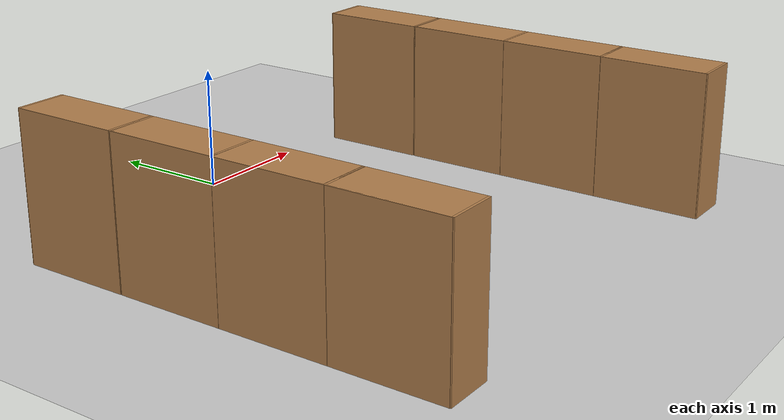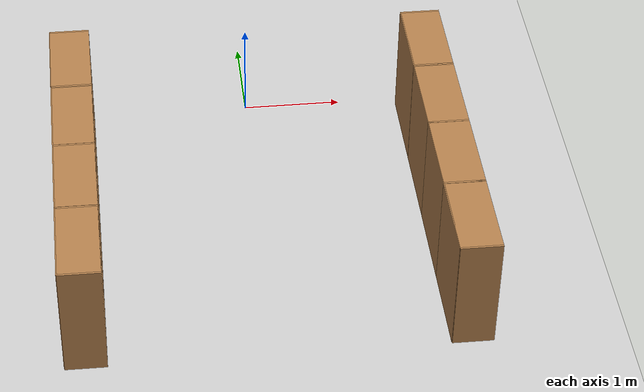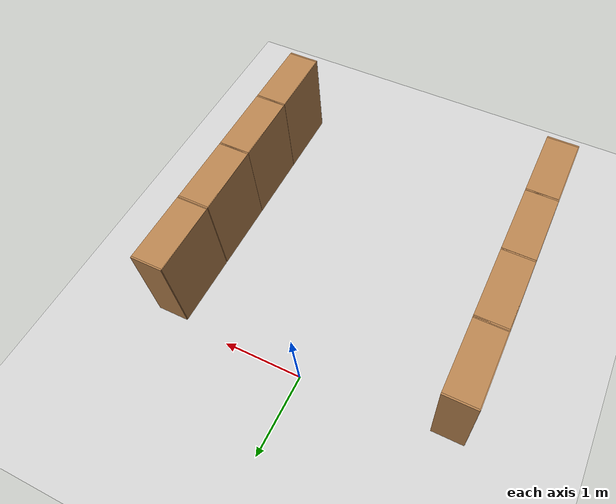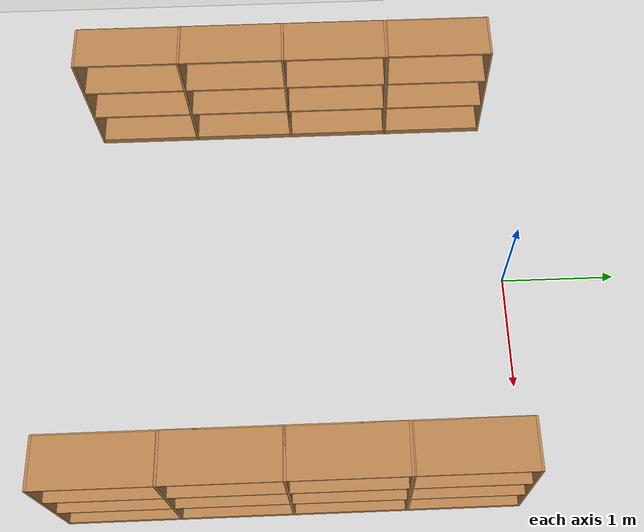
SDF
<sdf version="1.6">
 <world name="default">
  <model name="ground_plane">
   <static>1</static>
   <link name="link">
    <collision name="collision">
     <geometry><plane><normal>0 0 1</normal><size>100 100</size></plane></geometry>
     <surface><friction><ode><mu>100</mu><mu2>50</mu2></ode></friction></surface>
    </collision>
    <visual name="visual">
     <cast_shadows>0</cast_shadows>
     <geometry><plane><normal>0 0 1</normal><size>100 100</size></plane></geometry>
     <material>
      <script><uri>file://media/materials/scripts/gazebo.material</uri><name>Gazebo/Grey</name></script>
     </material>
    </visual>
   </link>
  </model>
  <model name="Bookself-4_clone_14_clone_7">
   <model name="Bookself-3">
    <model name="bookshelf_0">
     <static>1</static>
     <link name="link">
      <inertial><mass>1</mass></inertial>
      <collision name="back">
       <pose>0 0.005 0.6 0 -0 0</pose>
       <geometry><box><size>0.9 0.01 1.2</size></box></geometry>
      </collision>
      <visual name="visual1">
       <pose>0 0.005 0.6 0 -0 0</pose>
       <geometry><box><size>0.9 0.01 1.2</size></box></geometry>
       <material>
        <script><uri>file://media/materials/scripts/gazebo.material</uri><name>Gazebo/Wood</name></script>
       </material>
      </visual>
      <collision name="left_side">
       <pose>0.45 -0.195 0.6 0 -0 0</pose>
       <geometry><box><size>0.02 0.4 1.2</size></box></geometry>
      </collision>
      <visual name="visual2">
       <pose>0.45 -0.195 0.6 0 -0 0</pose>
       <geometry><box><size>0.02 0.4 1.2</size></box></geometry>
       <material>
        <script><uri>file://media/materials/scripts/gazebo.material</uri><name>Gazebo/Wood</name></script>
       </material>
      </visual>
      <collision name="right_side">
       <pose>-0.45 -0.195 0.6 0 -0 0</pose>
       <geometry><box><size>0.02 0.4 1.2</size></box></geometry>
      </collision>
      <visual name="visual3">
       <pose>-0.45 -0.195 0.6 0 -0 0</pose>
       <geometry><box><size>0.02 0.4 1.2</size></box></geometry>
       <material>
        <script><uri>file://media/materials/scripts/gazebo.material</uri><name>Gazebo/Wood</name></script>
       </material>
      </visual>
      <collision name="bottom">
       <pose>0 -0.195 0.03 0 -0 0</pose>
       <geometry><box><size>0.88 0.4 0.06</size></box></geometry>
      </collision>
      <visual name="visual4">
       <pose>0 -0.195 0.03 0 -0 0</pose>
       <geometry><box><size>0.88 0.4 0.06</size></box></geometry>
       <material>
        <script><uri>file://media/materials/scripts/gazebo.material</uri><name>Gazebo/Wood</name></script>
       </material>
      </visual>
      <collision name="top">
       <pose>0 -0.195 1.19 0 -0 0</pose>
       <geometry><box><size>0.88 0.4 0.02</size></box></geometry>
      </collision>
      <visual name="visual5">
       <pose>0 -0.195 1.19 0 -0 0</pose>
       <geometry><box><size>0.88 0.4 0.02</size></box></geometry>
       <material>
        <script><uri>file://media/materials/scripts/gazebo.material</uri><name>Gazebo/Wood</name></script>
       </material>
      </visual>
      <collision name="low_shelf">
       <pose>0 -0.195 0.43 0 -0 0</pose>
       <geometry><box><size>0.88 0.4 0.02</size></box></geometry>
      </collision>
      <visual name="visual6">
       <pose>0 -0.195 0.43 0 -0 0</pose>
       <geometry><box><size>0.88 0.4 0.02</size></box></geometry>
       <material>
        <script><uri>file://media/materials/scripts/gazebo.material</uri><name>Gazebo/Wood</name></script>
       </material>
      </visual>
      <collision name="high_shelf">
       <pose>0 -0.195 0.8 0 -0 0</pose>
       <geometry><box><size>0.88 0.4 0.02</size></box></geometry>
      </collision>
      <visual name="visual7">
       <pose>0 -0.195 0.8 0 -0 0</pose>
       <geometry><box><size>0.88 0.4 0.02</size></box></geometry>
       <material>
        <script><uri>file://media/materials/scripts/gazebo.material</uri><name>Gazebo/Wood</name></script>
       </material>
      </visual>
     </link>
     <pose>-0.903039 0 0 0 -0 0</pose>
    </model>
    <model name="bookshelf_1">
     <static>1</static>
     <link name="link">
      <inertial><mass>1</mass></inertial>
      <collision name="back">
       <pose>0 0.005 0.6 0 -0 0</pose>
       <geometry><box><size>0.9 0.01 1.2</size></box></geometry>
      </collision>
      <visual name="visual1">
       <pose>0 0.005 0.6 0 -0 0</pose>
       <geometry><box><size>0.9 0.01 1.2</size></box></geometry>
       <material>
        <script><uri>file://media/materials/scripts/gazebo.material</uri><name>Gazebo/Wood</name></script>
       </material>
      </visual>
      <collision name="left_side">
       <pose>0.45 -0.195 0.6 0 -0 0</pose>
       <geometry><box><size>0.02 0.4 1.2</size></box></geometry>
      </collision>
      <visual name="visual2">
       <pose>0.45 -0.195 0.6 0 -0 0</pose>
       <geometry><box><size>0.02 0.4 1.2</size></box></geometry>
       <material>
        <script><uri>file://media/materials/scripts/gazebo.material</uri><name>Gazebo/Wood</name></script>
       </material>
      </visual>
      <collision name="right_side">
       <pose>-0.45 -0.195 0.6 0 -0 0</pose>
       <geometry><box><size>0.02 0.4 1.2</size></box></geometry>
      </collision>
      <visual name="visual3">
       <pose>-0.45 -0.195 0.6 0 -0 0</pose>
       <geometry><box><size>0.02 0.4 1.2</size></box></geometry>
       <material>
        <script><uri>file://media/materials/scripts/gazebo.material</uri><name>Gazebo/Wood</name></script>
       </material>
      </visual>
      <collision name="bottom">
       <pose>0 -0.195 0.03 0 -0 0</pose>
       <geometry><box><size>0.88 0.4 0.06</size></box></geometry>
      </collision>
      <visual name="visual4">
       <pose>0 -0.195 0.03 0 -0 0</pose>
       <geometry><box><size>0.88 0.4 0.06</size></box></geometry>
       <material>
        <script><uri>file://media/materials/scripts/gazebo.material</uri><name>Gazebo/Wood</name></script>
       </material>
      </visual>
      <collision name="top">
       <pose>0 -0.195 1.19 0 -0 0</pose>
       <geometry><box><size>0.88 0.4 0.02</size></box></geometry>
      </collision>
      <visual name="visual5">
       <pose>0 -0.195 1.19 0 -0 0</pose>
       <geometry><box><size>0.88 0.4 0.02</size></box></geometry>
       <material>
        <script><uri>file://media/materials/scripts/gazebo.material</uri><name>Gazebo/Wood</name></script>
       </material>
      </visual>
      <collision name="low_shelf">
       <pose>0 -0.195 0.43 0 -0 0</pose>
       <geometry><box><size>0.88 0.4 0.02</size></box></geometry>
      </collision>
      <visual name="visual6">
       <pose>0 -0.195 0.43 0 -0 0</pose>
       <geometry><box><size>0.88 0.4 0.02</size></box></geometry>
       <material>
        <script><uri>file://media/materials/scripts/gazebo.material</uri><name>Gazebo/Wood</name></script>
       </material>
      </visual>
      <collision name="high_shelf">
       <pose>0 -0.195 0.8 0 -0 0</pose>
       <geometry><box><size>0.88 0.4 0.02</size></box></geometry>
      </collision>
      <visual name="visual7">
       <pose>0 -0.195 0.8 0 -0 0</pose>
       <geometry><box><size>0.88 0.4 0.02</size></box></geometry>
       <material>
        <script><uri>file://media/materials/scripts/gazebo.material</uri><name>Gazebo/Wood</name></script>
       </material>
      </visual>
     </link>
     <pose>0.000535 0 0 0 -0 0</pose>
    </model>
    <model name="bookshelf_1_clone">
     <static>1</static>
     <link name="link">
      <inertial><mass>1</mass></inertial>
      <collision name="back">
       <pose>0 0.005 0.6 0 -0 0</pose>
       <geometry><box><size>0.9 0.01 1.2</size></box></geometry>
      </collision>
      <visual name="visual1">
       <pose>0 0.005 0.6 0 -0 0</pose>
       <geometry><box><size>0.9 0.01 1.2</size></box></geometry>
       <material>
        <script><uri>file://media/materials/scripts/gazebo.material</uri><name>Gazebo/Wood</name></script>
       </material>
      </visual>
      <collision name="left_side">
       <pose>0.45 -0.195 0.6 0 -0 0</pose>
       <geometry><box><size>0.02 0.4 1.2</size></box></geometry>
      </collision>
      <visual name="visual2">
       <pose>0.45 -0.195 0.6 0 -0 0</pose>
       <geometry><box><size>0.02 0.4 1.2</size></box></geometry>
       <material>
        <script><uri>file://media/materials/scripts/gazebo.material</uri><name>Gazebo/Wood</name></script>
       </material>
      </visual>
      <collision name="right_side">
       <pose>-0.45 -0.195 0.6 0 -0 0</pose>
       <geometry><box><size>0.02 0.4 1.2</size></box></geometry>
      </collision>
      <visual name="visual3">
       <pose>-0.45 -0.195 0.6 0 -0 0</pose>
       <geometry><box><size>0.02 0.4 1.2</size></box></geometry>
       <material>
        <script><uri>file://media/materials/scripts/gazebo.material</uri><name>Gazebo/Wood</name></script>
       </material>
      </visual>
      <collision name="bottom">
       <pose>0 -0.195 0.03 0 -0 0</pose>
       <geometry><box><size>0.88 0.4 0.06</size></box></geometry>
      </collision>
      <visual name="visual4">
       <pose>0 -0.195 0.03 0 -0 0</pose>
       <geometry><box><size>0.88 0.4 0.06</size></box></geometry>
       <material>
        <script><uri>file://media/materials/scripts/gazebo.material</uri><name>Gazebo/Wood</name></script>
       </material>
      </visual>
      <collision name="top">
       <pose>0 -0.195 1.19 0 -0 0</pose>
       <geometry><box><size>0.88 0.4 0.02</size></box></geometry>
      </collision>
      <visual name="visual5">
       <pose>0 -0.195 1.19 0 -0 0</pose>
       <geometry><box><size>0.88 0.4 0.02</size></box></geometry>
       <material>
        <script><uri>file://media/materials/scripts/gazebo.material</uri><name>Gazebo/Wood</name></script>
       </material>
      </visual>
      <collision name="low_shelf">
       <pose>0 -0.195 0.43 0 -0 0</pose>
       <geometry><box><size>0.88 0.4 0.02</size></box></geometry>
      </collision>
      <visual name="visual6">
       <pose>0 -0.195 0.43 0 -0 0</pose>
       <geometry><box><size>0.88 0.4 0.02</size></box></geometry>
       <material>
        <script><uri>file://media/materials/scripts/gazebo.material</uri><name>Gazebo/Wood</name></script>
       </material>
      </visual>
      <collision name="high_shelf">
       <pose>0 -0.195 0.8 0 -0 0</pose>
       <geometry><box><size>0.88 0.4 0.02</size></box></geometry>
      </collision>
      <visual name="visual7">
       <pose>0 -0.195 0.8 0 -0 0</pose>
       <geometry><box><size>0.88 0.4 0.02</size></box></geometry>
       <material>
        <script><uri>file://media/materials/scripts/gazebo.material</uri><name>Gazebo/Wood</name></script>
       </material>
      </visual>
     </link>
     <pose>0.902502 0 0 0 -0 0</pose>
    </model>
    <static>1</static>
    <pose>-0.906894 3e-05 0 0 -0 0</pose>
   </model>
   <model name="bookshelf">
    <static>1</static>
    <link name="link">
     <inertial><mass>1</mass></inertial>
     <collision name="back">
      <pose>0 0.005 0.6 0 -0 0</pose>
      <geometry><box><size>0.9 0.01 1.2</size></box></geometry>
     </collision>
     <visual name="visual1">
      <pose>0 0.005 0.6 0 -0 0</pose>
      <geometry><box><size>0.9 0.01 1.2</size></box></geometry>
      <material>
       <script><uri>file://media/materials/scripts/gazebo.material</uri><name>Gazebo/Wood</name></script>
      </material>
     </visual>
     <collision name="left_side">
      <pose>0.45 -0.195 0.6 0 -0 0</pose>
      <geometry><box><size>0.02 0.4 1.2</size></box></geometry>
     </collision>
     <visual name="visual2">
      <pose>0.45 -0.195 0.6 0 -0 0</pose>
      <geometry><box><size>0.02 0.4 1.2</size></box></geometry>
      <material>
       <script><uri>file://media/materials/scripts/gazebo.material</uri><name>Gazebo/Wood</name></script>
      </material>
     </visual>
     <collision name="right_side">
      <pose>-0.45 -0.195 0.6 0 -0 0</pose>
      <geometry><box><size>0.02 0.4 1.2</size></box></geometry>
     </collision>
     <visual name="visual3">
      <pose>-0.45 -0.195 0.6 0 -0 0</pose>
      <geometry><box><size>0.02 0.4 1.2</size></box></geometry>
      <material>
       <script><uri>file://media/materials/scripts/gazebo.material</uri><name>Gazebo/Wood</name></script>
      </material>
     </visual>
     <collision name="bottom">
      <pose>0 -0.195 0.03 0 -0 0</pose>
      <geometry><box><size>0.88 0.4 0.06</size></box></geometry>
     </collision>
     <visual name="visual4">
      <pose>0 -0.195 0.03 0 -0 0</pose>
      <geometry><box><size>0.88 0.4 0.06</size></box></geometry>
      <material>
       <script><uri>file://media/materials/scripts/gazebo.material</uri><name>Gazebo/Wood</name></script>
      </material>
     </visual>
     <collision name="top">
      <pose>0 -0.195 1.19 0 -0 0</pose>
      <geometry><box><size>0.88 0.4 0.02</size></box></geometry>
     </collision>
     <visual name="visual5">
      <pose>0 -0.195 1.19 0 -0 0</pose>
      <geometry><box><size>0.88 0.4 0.02</size></box></geometry>
      <material>
       <script><uri>file://media/materials/scripts/gazebo.material</uri><name>Gazebo/Wood</name></script>
      </material>
     </visual>
     <collision name="low_shelf">
      <pose>0 -0.195 0.43 0 -0 0</pose>
      <geometry><box><size>0.88 0.4 0.02</size></box></geometry>
     </collision>
     <visual name="visual6">
      <pose>0 -0.195 0.43 0 -0 0</pose>
      <geometry><box><size>0.88 0.4 0.02</size></box></geometry>
      <material>
       <script><uri>file://media/materials/scripts/gazebo.material</uri><name>Gazebo/Wood</name></script>
      </material>
     </visual>
     <collision name="high_shelf">
      <pose>0 -0.195 0.8 0 -0 0</pose>
      <geometry><box><size>0.88 0.4 0.02</size></box></geometry>
     </collision>
     <visual name="visual7">
      <pose>0 -0.195 0.8 0 -0 0</pose>
      <geometry><box><size>0.88 0.4 0.02</size></box></geometry>
      <material>
       <script><uri>file://media/materials/scripts/gazebo.material</uri><name>Gazebo/Wood</name></script>
      </material>
     </visual>
    </link>
    <pose>0.906808 3e-05 0 0 -0 0</pose>
   </model>
   <static>0</static>
   <pose>1.61635 -1.43549 0 0 -0 1.5707</pose>
  </model>
  <model name="Bookself-4_clone_14_clone_9">
   <model name="Bookself-3">
    <model name="bookshelf_0">
     <static>1</static>
     <link name="link">
      <inertial><mass>1</mass></inertial>
      <collision name="back">
       <pose>0 0.005 0.6 0 -0 0</pose>
       <geometry><box><size>0.9 0.01 1.2</size></box></geometry>
      </collision>
      <visual name="visual1">
       <pose>0 0.005 0.6 0 -0 0</pose>
       <geometry><box><size>0.9 0.01 1.2</size></box></geometry>
       <material>
        <script><uri>file://media/materials/scripts/gazebo.material</uri><name>Gazebo/Wood</name></script>
       </material>
      </visual>
      <collision name="left_side">
       <pose>0.45 -0.195 0.6 0 -0 0</pose>
       <geometry><box><size>0.02 0.4 1.2</size></box></geometry>
      </collision>
      <visual name="visual2">
       <pose>0.45 -0.195 0.6 0 -0 0</pose>
       <geometry><box><size>0.02 0.4 1.2</size></box></geometry>
       <material>
        <script><uri>file://media/materials/scripts/gazebo.material</uri><name>Gazebo/Wood</name></script>
       </material>
      </visual>
      <collision name="right_side">
       <pose>-0.45 -0.195 0.6 0 -0 0</pose>
       <geometry><box><size>0.02 0.4 1.2</size></box></geometry>
      </collision>
      <visual name="visual3">
       <pose>-0.45 -0.195 0.6 0 -0 0</pose>
       <geometry><box><size>0.02 0.4 1.2</size></box></geometry>
       <material>
        <script><uri>file://media/materials/scripts/gazebo.material</uri><name>Gazebo/Wood</name></script>
       </material>
      </visual>
      <collision name="bottom">
       <pose>0 -0.195 0.03 0 -0 0</pose>
       <geometry><box><size>0.88 0.4 0.06</size></box></geometry>
      </collision>
      <visual name="visual4">
       <pose>0 -0.195 0.03 0 -0 0</pose>
       <geometry><box><size>0.88 0.4 0.06</size></box></geometry>
       <material>
        <script><uri>file://media/materials/scripts/gazebo.material</uri><name>Gazebo/Wood</name></script>
       </material>
      </visual>
      <collision name="top">
       <pose>0 -0.195 1.19 0 -0 0</pose>
       <geometry><box><size>0.88 0.4 0.02</size></box></geometry>
      </collision>
      <visual name="visual5">
       <pose>0 -0.195 1.19 0 -0 0</pose>
       <geometry><box><size>0.88 0.4 0.02</size></box></geometry>
       <material>
        <script><uri>file://media/materials/scripts/gazebo.material</uri><name>Gazebo/Wood</name></script>
       </material>
      </visual>
      <collision name="low_shelf">
       <pose>0 -0.195 0.43 0 -0 0</pose>
       <geometry><box><size>0.88 0.4 0.02</size></box></geometry>
      </collision>
      <visual name="visual6">
       <pose>0 -0.195 0.43 0 -0 0</pose>
       <geometry><box><size>0.88 0.4 0.02</size></box></geometry>
       <material>
        <script><uri>file://media/materials/scripts/gazebo.material</uri><name>Gazebo/Wood</name></script>
       </material>
      </visual>
      <collision name="high_shelf">
       <pose>0 -0.195 0.8 0 -0 0</pose>
       <geometry><box><size>0.88 0.4 0.02</size></box></geometry>
      </collision>
      <visual name="visual7">
       <pose>0 -0.195 0.8 0 -0 0</pose>
       <geometry><box><size>0.88 0.4 0.02</size></box></geometry>
       <material>
        <script><uri>file://media/materials/scripts/gazebo.material</uri><name>Gazebo/Wood</name></script>
       </material>
      </visual>
     </link>
     <pose>-0.903039 0 0 0 -0 0</pose>
    </model>
    <model name="bookshelf_1">
     <static>1</static>
     <link name="link">
      <inertial><mass>1</mass></inertial>
      <collision name="back">
       <pose>0 0.005 0.6 0 -0 0</pose>
       <geometry><box><size>0.9 0.01 1.2</size></box></geometry>
      </collision>
      <visual name="visual1">
       <pose>0 0.005 0.6 0 -0 0</pose>
       <geometry><box><size>0.9 0.01 1.2</size></box></geometry>
       <material>
        <script><uri>file://media/materials/scripts/gazebo.material</uri><name>Gazebo/Wood</name></script>
       </material>
      </visual>
      <collision name="left_side">
       <pose>0.45 -0.195 0.6 0 -0 0</pose>
       <geometry><box><size>0.02 0.4 1.2</size></box></geometry>
      </collision>
      <visual name="visual2">
       <pose>0.45 -0.195 0.6 0 -0 0</pose>
       <geometry><box><size>0.02 0.4 1.2</size></box></geometry>
       <material>
        <script><uri>file://media/materials/scripts/gazebo.material</uri><name>Gazebo/Wood</name></script>
       </material>
      </visual>
      <collision name="right_side">
       <pose>-0.45 -0.195 0.6 0 -0 0</pose>
       <geometry><box><size>0.02 0.4 1.2</size></box></geometry>
      </collision>
      <visual name="visual3">
       <pose>-0.45 -0.195 0.6 0 -0 0</pose>
       <geometry><box><size>0.02 0.4 1.2</size></box></geometry>
       <material>
        <script><uri>file://media/materials/scripts/gazebo.material</uri><name>Gazebo/Wood</name></script>
       </material>
      </visual>
      <collision name="bottom">
       <pose>0 -0.195 0.03 0 -0 0</pose>
       <geometry><box><size>0.88 0.4 0.06</size></box></geometry>
      </collision>
      <visual name="visual4">
       <pose>0 -0.195 0.03 0 -0 0</pose>
       <geometry><box><size>0.88 0.4 0.06</size></box></geometry>
       <material>
        <script><uri>file://media/materials/scripts/gazebo.material</uri><name>Gazebo/Wood</name></script>
       </material>
      </visual>
      <collision name="top">
       <pose>0 -0.195 1.19 0 -0 0</pose>
       <geometry><box><size>0.88 0.4 0.02</size></box></geometry>
      </collision>
      <visual name="visual5">
       <pose>0 -0.195 1.19 0 -0 0</pose>
       <geometry><box><size>0.88 0.4 0.02</size></box></geometry>
       <material>
        <script><uri>file://media/materials/scripts/gazebo.material</uri><name>Gazebo/Wood</name></script>
       </material>
      </visual>
      <collision name="low_shelf">
       <pose>0 -0.195 0.43 0 -0 0</pose>
       <geometry><box><size>0.88 0.4 0.02</size></box></geometry>
      </collision>
      <visual name="visual6">
       <pose>0 -0.195 0.43 0 -0 0</pose>
       <geometry><box><size>0.88 0.4 0.02</size></box></geometry>
       <material>
        <script><uri>file://media/materials/scripts/gazebo.material</uri><name>Gazebo/Wood</name></script>
       </material>
      </visual>
      <collision name="high_shelf">
       <pose>0 -0.195 0.8 0 -0 0</pose>
       <geometry><box><size>0.88 0.4 0.02</size></box></geometry>
      </collision>
      <visual name="visual7">
       <pose>0 -0.195 0.8 0 -0 0</pose>
       <geometry><box><size>0.88 0.4 0.02</size></box></geometry>
       <material>
        <script><uri>file://media/materials/scripts/gazebo.material</uri><name>Gazebo/Wood</name></script>
       </material>
      </visual>
     </link>
     <pose>0.000535 0 0 0 -0 0</pose>
    </model>
    <model name="bookshelf_1_clone">
     <static>1</static>
     <link name="link">
      <inertial><mass>1</mass></inertial>
      <collision name="back">
       <pose>0 0.005 0.6 0 -0 0</pose>
       <geometry><box><size>0.9 0.01 1.2</size></box></geometry>
      </collision>
      <visual name="visual1">
       <pose>0 0.005 0.6 0 -0 0</pose>
       <geometry><box><size>0.9 0.01 1.2</size></box></geometry>
       <material>
        <script><uri>file://media/materials/scripts/gazebo.material</uri><name>Gazebo/Wood</name></script>
       </material>
      </visual>
      <collision name="left_side">
       <pose>0.45 -0.195 0.6 0 -0 0</pose>
       <geometry><box><size>0.02 0.4 1.2</size></box></geometry>
      </collision>
      <visual name="visual2">
       <pose>0.45 -0.195 0.6 0 -0 0</pose>
       <geometry><box><size>0.02 0.4 1.2</size></box></geometry>
       <material>
        <script><uri>file://media/materials/scripts/gazebo.material</uri><name>Gazebo/Wood</name></script>
       </material>
      </visual>
      <collision name="right_side">
       <pose>-0.45 -0.195 0.6 0 -0 0</pose>
       <geometry><box><size>0.02 0.4 1.2</size></box></geometry>
      </collision>
      <visual name="visual3">
       <pose>-0.45 -0.195 0.6 0 -0 0</pose>
       <geometry><box><size>0.02 0.4 1.2</size></box></geometry>
       <material>
        <script><uri>file://media/materials/scripts/gazebo.material</uri><name>Gazebo/Wood</name></script>
       </material>
      </visual>
      <collision name="bottom">
       <pose>0 -0.195 0.03 0 -0 0</pose>
       <geometry><box><size>0.88 0.4 0.06</size></box></geometry>
      </collision>
      <visual name="visual4">
       <pose>0 -0.195 0.03 0 -0 0</pose>
       <geometry><box><size>0.88 0.4 0.06</size></box></geometry>
       <material>
        <script><uri>file://media/materials/scripts/gazebo.material</uri><name>Gazebo/Wood</name></script>
       </material>
      </visual>
      <collision name="top">
       <pose>0 -0.195 1.19 0 -0 0</pose>
       <geometry><box><size>0.88 0.4 0.02</size></box></geometry>
      </collision>
      <visual name="visual5">
       <pose>0 -0.195 1.19 0 -0 0</pose>
       <geometry><box><size>0.88 0.4 0.02</size></box></geometry>
       <material>
        <script><uri>file://media/materials/scripts/gazebo.material</uri><name>Gazebo/Wood</name></script>
       </material>
      </visual>
      <collision name="low_shelf">
       <pose>0 -0.195 0.43 0 -0 0</pose>
       <geometry><box><size>0.88 0.4 0.02</size></box></geometry>
      </collision>
      <visual name="visual6">
       <pose>0 -0.195 0.43 0 -0 0</pose>
       <geometry><box><size>0.88 0.4 0.02</size></box></geometry>
       <material>
        <script><uri>file://media/materials/scripts/gazebo.material</uri><name>Gazebo/Wood</name></script>
       </material>
      </visual>
      <collision name="high_shelf">
       <pose>0 -0.195 0.8 0 -0 0</pose>
       <geometry><box><size>0.88 0.4 0.02</size></box></geometry>
      </collision>
      <visual name="visual7">
       <pose>0 -0.195 0.8 0 -0 0</pose>
       <geometry><box><size>0.88 0.4 0.02</size></box></geometry>
       <material>
        <script><uri>file://media/materials/scripts/gazebo.material</uri><name>Gazebo/Wood</name></script>
       </material>
      </visual>
     </link>
     <pose>0.902502 0 0 0 -0 0</pose>
    </model>
    <static>1</static>
    <pose>-0.906894 3e-05 0 0 -0 0</pose>
   </model>
   <model name="bookshelf">
    <static>1</static>
    <link name="link">
     <inertial><mass>1</mass></inertial>
     <collision name="back">
      <pose>0 0.005 0.6 0 -0 0</pose>
      <geometry><box><size>0.9 0.01 1.2</size></box></geometry>
     </collision>
     <visual name="visual1">
      <pose>0 0.005 0.6 0 -0 0</pose>
      <geometry><box><size>0.9 0.01 1.2</size></box></geometry>
      <material>
       <script><uri>file://media/materials/scripts/gazebo.material</uri><name>Gazebo/Wood</name></script>
      </material>
     </visual>
     <collision name="left_side">
      <pose>0.45 -0.195 0.6 0 -0 0</pose>
      <geometry><box><size>0.02 0.4 1.2</size></box></geometry>
     </collision>
     <visual name="visual2">
      <pose>0.45 -0.195 0.6 0 -0 0</pose>
      <geometry><box><size>0.02 0.4 1.2</size></box></geometry>
      <material>
       <script><uri>file://media/materials/scripts/gazebo.material</uri><name>Gazebo/Wood</name></script>
      </material>
     </visual>
     <collision name="right_side">
      <pose>-0.45 -0.195 0.6 0 -0 0</pose>
      <geometry><box><size>0.02 0.4 1.2</size></box></geometry>
     </collision>
     <visual name="visual3">
      <pose>-0.45 -0.195 0.6 0 -0 0</pose>
      <geometry><box><size>0.02 0.4 1.2</size></box></geometry>
      <material>
       <script><uri>file://media/materials/scripts/gazebo.material</uri><name>Gazebo/Wood</name></script>
      </material>
     </visual>
     <collision name="bottom">
      <pose>0 -0.195 0.03 0 -0 0</pose>
      <geometry><box><size>0.88 0.4 0.06</size></box></geometry>
     </collision>
     <visual name="visual4">
      <pose>0 -0.195 0.03 0 -0 0</pose>
      <geometry><box><size>0.88 0.4 0.06</size></box></geometry>
      <material>
       <script><uri>file://media/materials/scripts/gazebo.material</uri><name>Gazebo/Wood</name></script>
      </material>
     </visual>
     <collision name="top">
      <pose>0 -0.195 1.19 0 -0 0</pose>
      <geometry><box><size>0.88 0.4 0.02</size></box></geometry>
     </collision>
     <visual name="visual5">
      <pose>0 -0.195 1.19 0 -0 0</pose>
      <geometry><box><size>0.88 0.4 0.02</size></box></geometry>
      <material>
       <script><uri>file://media/materials/scripts/gazebo.material</uri><name>Gazebo/Wood</name></script>
      </material>
     </visual>
     <collision name="low_shelf">
      <pose>0 -0.195 0.43 0 -0 0</pose>
      <geometry><box><size>0.88 0.4 0.02</size></box></geometry>
     </collision>
     <visual name="visual6">
      <pose>0 -0.195 0.43 0 -0 0</pose>
      <geometry><box><size>0.88 0.4 0.02</size></box></geometry>
      <material>
       <script><uri>file://media/materials/scripts/gazebo.material</uri><name>Gazebo/Wood</name></script>
      </material>
     </visual>
     <collision name="high_shelf">
      <pose>0 -0.195 0.8 0 -0 0</pose>
      <geometry><box><size>0.88 0.4 0.02</size></box></geometry>
     </collision>
     <visual name="visual7">
      <pose>0 -0.195 0.8 0 -0 0</pose>
      <geometry><box><size>0.88 0.4 0.02</size></box></geometry>
      <material>
       <script><uri>file://media/materials/scripts/gazebo.material</uri><name>Gazebo/Wood</name></script>
      </material>
     </visual>
    </link>
    <pose>0.906808 3e-05 0 0 -0 0</pose>
   </model>
   <static>0</static>
   <pose>-2.01111 -1.43549 0 0 -0 1.5707</pose>
  </model>
 </world>
</sdf>
